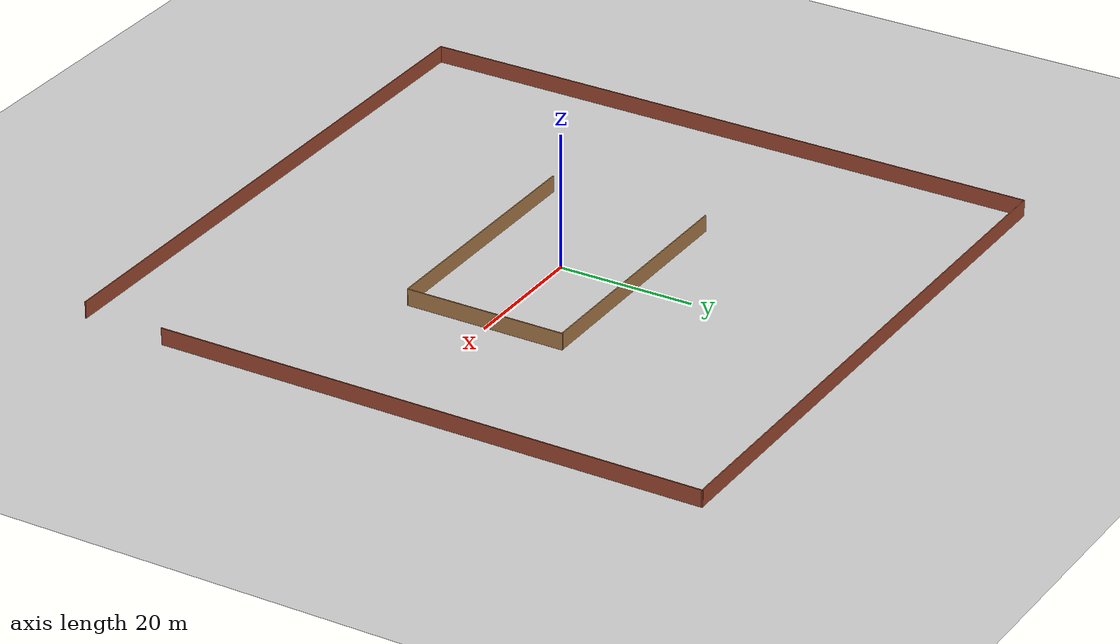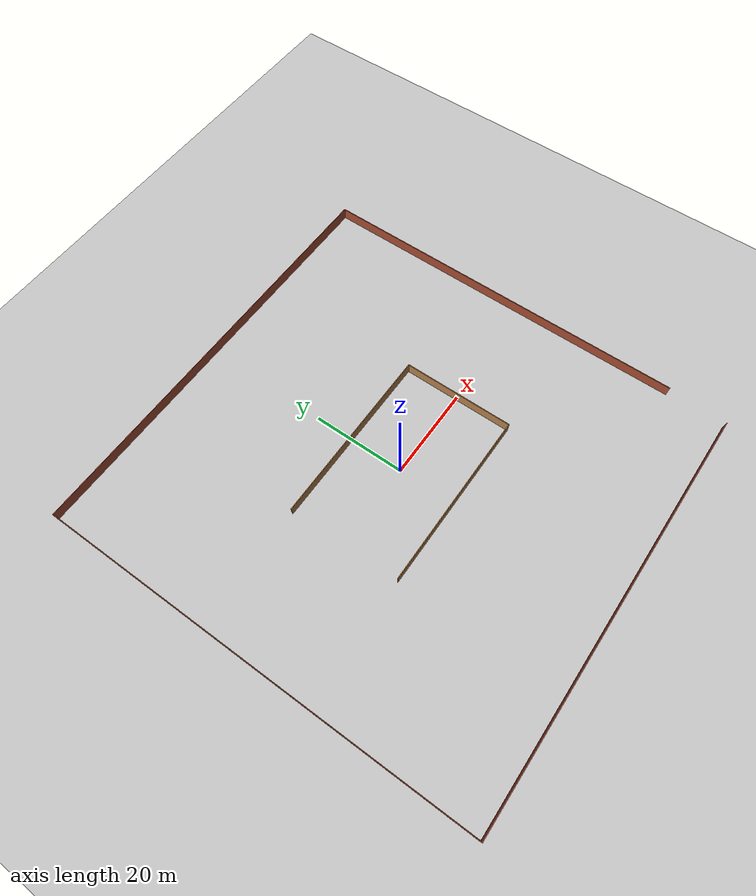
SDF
<?xml version="1.0" ?>
<sdf version="1.7">
  <world name="default">

    <include>
      <uri>model://sun</uri>
    </include>

    <include>
      <uri>model://ground_plane</uri>
    </include>

    <include>
      <uri>model://homework_world</uri>
      <pose>0 0 0 0 0 0</pose>
    </include>
  </world>
</sdf>

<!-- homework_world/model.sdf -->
<sdf version='1.7'>
  <model name='homework_world'>
    <pose>-1.87683 -0.078465 0 0 -0 0</pose>
    <link name='Wall_10'>
      <collision name='Wall_10_Collision'>
        <geometry>
          <box>
            <size>89.5 0.15 2.5</size>
          </box>
        </geometry>
        <pose>0 0 1.25 0 -0 0</pose>
      </collision>
      <visual name='Wall_10_Visual'>
        <pose>0 0 1.25 0 -0 0</pose>
        <geometry>
          <box>
            <size>89.5 0.15 2.5</size>
          </box>
        </geometry>
        <material>
          <script>
            <uri>file://media/materials/scripts/gazebo.material</uri>
            <name>Gazebo/Bricks</name>
          </script>
          <ambient>1 1 1 1</ambient>
        </material>
        <meta>
          <layer>0</layer>
        </meta>
      </visual>
      <pose>-0.375 -47.05 0 0 -0 0</pose>
    </link>
    <link name='Wall_12'>
      <collision name='Wall_12_Collision'>
        <geometry>
          <box>
            <size>38.5 0.15 2.5</size>
          </box>
        </geometry>
        <pose>0 0 1.25 0 -0 0</pose>
      </collision>
      <visual name='Wall_12_Visual'>
        <pose>0 0 1.25 0 -0 0</pose>
        <geometry>
          <box>
            <size>38.5 0.15 2.5</size>
          </box>
        </geometry>
        <material>
          <script>
            <uri>file://media/materials/scripts/gazebo.material</uri>
            <name>Gazebo/Wood</name>
          </script>
          <ambient>1 1 1 1</ambient>
        </material>
        <meta>
          <layer>0</layer>
        </meta>
      </visual>
      <pose>0.326256 11.6247 0 0 -0 0</pose>
    </link>
    <link name='Wall_13'>
      <collision name='Wall_13_Collision'>
        <geometry>
          <box>
            <size>24 0.15 2.5</size>
          </box>
        </geometry>
        <pose>0 0 1.25 0 -0 0</pose>
      </collision>
      <visual name='Wall_13_Visual'>
        <pose>0 0 1.25 0 -0 0</pose>
        <geometry>
          <box>
            <size>24 0.15 2.5</size>
          </box>
        </geometry>
        <material>
          <script>
            <uri>file://media/materials/scripts/gazebo.material</uri>
            <name>Gazebo/Wood</name>
          </script>
          <ambient>1 1 1 1</ambient>
        </material>
        <meta>
          <layer>0</layer>
        </meta>
      </visual>
      <pose>19.5013 -0.300267 0 0 -0 -1.5708</pose>
    </link>
    <link name='Wall_14'>
      <collision name='Wall_14_Collision'>
        <geometry>
          <box>
            <size>38 0.15 2.5</size>
          </box>
        </geometry>
        <pose>0 0 1.25 0 -0 0</pose>
      </collision>
      <visual name='Wall_14_Visual'>
        <pose>0 0 1.25 0 -0 0</pose>
        <geometry>
          <box>
            <size>38 0.15 2.5</size>
          </box>
        </geometry>
        <material>
          <script>
            <uri>file://media/materials/scripts/gazebo.material</uri>
            <name>Gazebo/Wood</name>
          </script>
          <ambient>1 1 1 1</ambient>
        </material>
        <meta>
          <layer>0</layer>
        </meta>
      </visual>
      <pose>0.576256 -12.2253 0 0 -0 3.14159</pose>
    </link>
    <link name='Wall_7'>
      <collision name='Wall_7_Collision'>
        <geometry>
          <box>
            <size>81.5 0.15 2.5</size>
          </box>
        </geometry>
        <pose>0 0 1.25 0 -0 0</pose>
      </collision>
      <visual name='Wall_7_Visual'>
        <pose>0 0 1.25 0 -0 0</pose>
        <geometry>
          <box>
            <size>81.5 0.15 2.5</size>
          </box>
        </geometry>
        <material>
          <script>
            <uri>file://media/materials/scripts/gazebo.material</uri>
            <name>Gazebo/Bricks</name>
          </script>
          <ambient>1 1 1 1</ambient>
        </material>
        <meta>
          <layer>0</layer>
        </meta>
      </visual>
      <pose>45.05 6.375 0 0 -0 1.5708</pose>
    </link>
    <link name='Wall_8'>
      <collision name='Wall_8_Collision'>
        <geometry>
          <box>
            <size>90.25 0.15 2.5</size>
          </box>
        </geometry>
        <pose>0 0 1.25 0 -0 0</pose>
      </collision>
      <visual name='Wall_8_Visual'>
        <pose>0 0 1.25 0 -0 0</pose>
        <geometry>
          <box>
            <size>90.25 0.15 2.5</size>
          </box>
        </geometry>
        <material>
          <script>
            <uri>file://media/materials/scripts/gazebo.material</uri>
            <name>Gazebo/Bricks</name>
          </script>
          <ambient>1 1 1 1</ambient>
        </material>
        <meta>
          <layer>0</layer>
        </meta>
      </visual>
      <pose>0 47.05 0 0 -0 3.14159</pose>
    </link>
    <link name='Wall_9'>
      <collision name='Wall_9_Collision'>
        <geometry>
          <box>
            <size>94.25 0.15 2.5</size>
          </box>
        </geometry>
        <pose>0 0 1.25 0 -0 0</pose>
      </collision>
      <visual name='Wall_9_Visual'>
        <pose>0 0 1.25 0 -0 0</pose>
        <geometry>
          <box>
            <size>94.25 0.15 2.5</size>
          </box>
        </geometry>
        <material>
          <script>
            <uri>file://media/materials/scripts/gazebo.material</uri>
            <name>Gazebo/Bricks</name>
          </script>
          <ambient>1 1 1 1</ambient>
        </material>
        <meta>
          <layer>0</layer>
        </meta>
      </visual>
      <pose>-45.05 -1e-06 0 0 -0 -1.5708</pose>
    </link>
    <static>1</static>
  </model>
</sdf>
